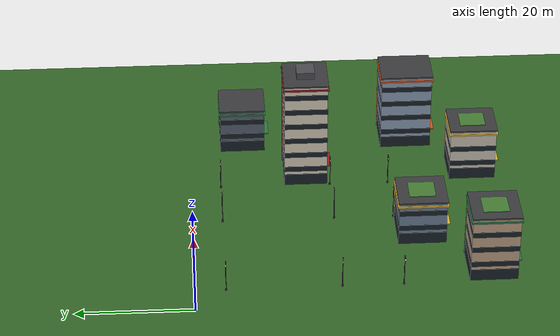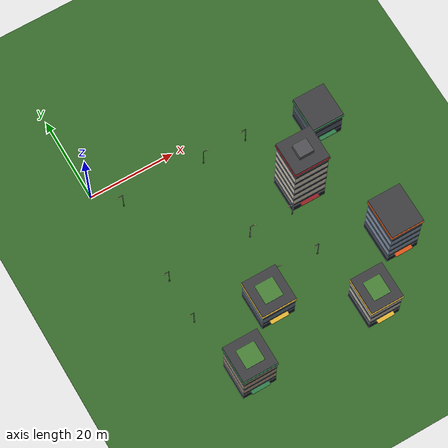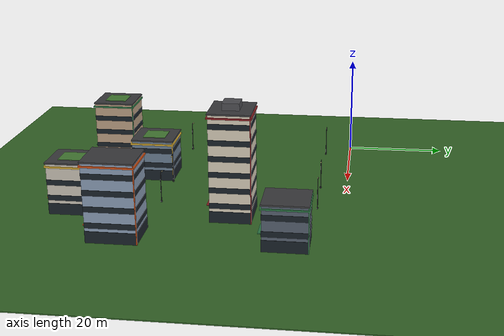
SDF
<sdf version="1.9">
 <world name="city">
  <model name="ground">
   <static>true</static>
   <link name="link">
    <collision name="collision">
     <pose>0 0 -0.1 0 0 0</pose>
     <geometry><box><size>220 220 0.2</size></box></geometry>
     <surface><friction><ode><mu>1.0</mu><mu2>1.0</mu2></ode></friction></surface>
    </collision>
    <visual name="visual">
     <pose>0 0 -0.1 0 0 0</pose>
     <geometry><box><size>220 220 0.2</size></box></geometry>
     <material>
      <ambient>0.17 0.33 0.13 1</ambient>
      <diffuse>0.21 0.41 0.16 1</diffuse>
      <specular>0.05 0.06 0.04 1</specular>
     </material>
    </visual>
   </link>
  </model>
  <model name="building_10">
   <static>true</static>
   <pose>9.5 -50.5 0 0 0 0</pose>
   <link name="link">
    <collision name="collision">
     <pose>0 0 6.204 0 0 0</pose>
     <geometry><box><size>7.75 8.086 12.408</size></box></geometry>
    </collision>
    <visual name="body">
     <pose>0 0 6.204 0 0 0</pose>
     <geometry><box><size>7.75 8.086 12.408</size></box></geometry>
     <material>
      <ambient>0.74 0.63 0.52 1</ambient>
      <diffuse>0.74 0.63 0.52 1</diffuse>
      <specular>0.16 0.16 0.18 1</specular>
      <pbr><metal><roughness>0.62</roughness><metalness>0.08</metalness></metal></pbr>
     </material>
    </visual>
    <visual name="podium">
     <pose>0 0 1.1 0 0 0</pose>
     <geometry><box><size>7.85 8.186 2.2</size></box></geometry>
     <material>
      <ambient>0.07 0.09 0.11 1</ambient>
      <diffuse>0.1 0.13 0.16 1</diffuse>
      <specular>0.45 0.47 0.5 1</specular>
      <pbr><metal><roughness>0.22</roughness><metalness>0.4</metalness></metal></pbr>
     </material>
    </visual>
    <visual name="canopy">
     <pose>0 -4.443 2.55 0 0 0</pose>
     <geometry><box><size>4.263 0.90 0.18</size></box></geometry>
     <material>
      <ambient>0.18 0.48 0.28 1</ambient>
      <diffuse>0.18 0.48 0.28 1</diffuse>
      <specular>0.25 0.25 0.25 1</specular>
      <pbr><metal><roughness>0.45</roughness><metalness>0</metalness></metal></pbr>
     </material>
    </visual>
    <visual name="corner_column">
     <pose>3.915 4.083 6.204 0 0 0</pose>
     <geometry><box><size>0.16 0.16 12.408</size></box></geometry>
     <material>
      <ambient>0.18 0.48 0.28 1</ambient>
      <diffuse>0.18 0.48 0.28 1</diffuse>
      <specular>0.25 0.25 0.25 1</specular>
      <pbr><metal><roughness>0.45</roughness><metalness>0</metalness></metal></pbr>
     </material>
    </visual>
    <visual name="glass_0">
     <pose>0 0 3.3 0 0 0</pose>
     <geometry><box><size>7.81 8.146 1.05</size></box></geometry>
     <material>
      <ambient>0.075 0.095 0.115 1</ambient>
      <diffuse>0.1 0.13 0.16 1</diffuse>
      <specular>0.55 0.6 0.65 1</specular>
      <emissive>0.06 0.09 0.12 1</emissive>
      <pbr><metal><roughness>0.1</roughness><metalness>0.55</metalness></metal></pbr>
     </material>
    </visual>
    <visual name="glass_1">
     <pose>0 0 6.3 0 0 0</pose>
     <geometry><box><size>7.81 8.146 1.05</size></box></geometry>
     <material>
      <ambient>0.075 0.095 0.115 1</ambient>
      <diffuse>0.1 0.13 0.16 1</diffuse>
      <specular>0.55 0.6 0.65 1</specular>
      <emissive>0.06 0.09 0.12 1</emissive>
      <pbr><metal><roughness>0.1</roughness><metalness>0.55</metalness></metal></pbr>
     </material>
    </visual>
    <visual name="glass_2">
     <pose>0 0 9.3 0 0 0</pose>
     <geometry><box><size>7.81 8.146 1.05</size></box></geometry>
     <material>
      <ambient>0.075 0.095 0.115 1</ambient>
      <diffuse>0.1 0.13 0.16 1</diffuse>
      <specular>0.55 0.6 0.65 1</specular>
      <emissive>0.46 0.3 0.12 1</emissive>
      <pbr><metal><roughness>0.1</roughness><metalness>0.55</metalness></metal></pbr>
     </material>
    </visual>
    <visual name="cornice">
     <pose>0 0 11.858 0 0 0</pose>
     <geometry><box><size>8.25 8.586 0.30</size></box></geometry>
     <material>
      <ambient>0.18 0.48 0.28 1</ambient>
      <diffuse>0.18 0.48 0.28 1</diffuse>
      <specular>0.2 0.2 0.2 1</specular>
      <pbr><metal><roughness>0.55</roughness><metalness>0</metalness></metal></pbr>
     </material>
    </visual>
    <visual name="roof">
     <pose>0 0 12.558 0 0 0</pose>
     <geometry><box><size>8.05 8.386 0.30</size></box></geometry>
     <material>
      <ambient>0.24 0.24 0.25 1</ambient>
      <diffuse>0.24 0.24 0.25 1</diffuse>
      <specular>0.18 0.18 0.18 1</specular>
      <pbr><metal><roughness>0.85</roughness><metalness>0</metalness></metal></pbr>
     </material>
    </visual>
    <visual name="roof_garden">
     <pose>0 0 12.748 0 0 0</pose>
     <geometry><box><size>4.263 4.447 0.16</size></box></geometry>
     <material>
      <ambient>0.24 0.44 0.18 1</ambient>
      <diffuse>0.28 0.5 0.21 1</diffuse>
      <specular>0.05 0.06 0.04 1</specular>
     </material>
    </visual>
   </link>
  </model>
  <model name="building_11">
   <static>true</static>
   <pose>20.5 -39.5 0 0 0 0</pose>
   <link name="link">
    <collision name="collision">
     <pose>0 0 4.11 0 0 0</pose>
     <geometry><box><size>7.762 8.267 8.219</size></box></geometry>
    </collision>
    <visual name="body">
     <pose>0 0 4.11 0 0 0</pose>
     <geometry><box><size>7.762 8.267 8.219</size></box></geometry>
     <material>
      <ambient>0.42 0.5 0.58 1</ambient>
      <diffuse>0.42 0.5 0.58 1</diffuse>
      <specular>0.16 0.16 0.18 1</specular>
      <pbr><metal><roughness>0.62</roughness><metalness>0.08</metalness></metal></pbr>
     </material>
    </visual>
    <visual name="podium">
     <pose>0 0 1.1 0 0 0</pose>
     <geometry><box><size>7.862 8.367 2.2</size></box></geometry>
     <material>
      <ambient>0.07 0.09 0.11 1</ambient>
      <diffuse>0.1 0.13 0.16 1</diffuse>
      <specular>0.45 0.47 0.5 1</specular>
      <pbr><metal><roughness>0.22</roughness><metalness>0.4</metalness></metal></pbr>
     </material>
    </visual>
    <visual name="canopy">
     <pose>0 -4.534 2.55 0 0 0</pose>
     <geometry><box><size>4.269 0.90 0.18</size></box></geometry>
     <material>
      <ambient>0.88 0.7 0.2 1</ambient>
      <diffuse>0.88 0.7 0.2 1</diffuse>
      <specular>0.25 0.25 0.25 1</specular>
      <pbr><metal><roughness>0.45</roughness><metalness>0</metalness></metal></pbr>
     </material>
    </visual>
    <visual name="corner_column">
     <pose>3.921 4.174 4.11 0 0 0</pose>
     <geometry><box><size>0.16 0.16 8.219</size></box></geometry>
     <material>
      <ambient>0.88 0.7 0.2 1</ambient>
      <diffuse>0.88 0.7 0.2 1</diffuse>
      <specular>0.25 0.25 0.25 1</specular>
      <pbr><metal><roughness>0.45</roughness><metalness>0</metalness></metal></pbr>
     </material>
    </visual>
    <visual name="glass_0">
     <pose>0 0 3.3 0 0 0</pose>
     <geometry><box><size>7.822 8.327 1.05</size></box></geometry>
     <material>
      <ambient>0.075 0.095 0.115 1</ambient>
      <diffuse>0.1 0.13 0.16 1</diffuse>
      <specular>0.55 0.6 0.65 1</specular>
      <emissive>0.06 0.09 0.12 1</emissive>
      <pbr><metal><roughness>0.1</roughness><metalness>0.55</metalness></metal></pbr>
     </material>
    </visual>
    <visual name="glass_1">
     <pose>0 0 6.3 0 0 0</pose>
     <geometry><box><size>7.822 8.327 1.05</size></box></geometry>
     <material>
      <ambient>0.075 0.095 0.115 1</ambient>
      <diffuse>0.1 0.13 0.16 1</diffuse>
      <specular>0.55 0.6 0.65 1</specular>
      <emissive>0.46 0.3 0.12 1</emissive>
      <pbr><metal><roughness>0.1</roughness><metalness>0.55</metalness></metal></pbr>
     </material>
    </visual>
    <visual name="cornice">
     <pose>0 0 7.669 0 0 0</pose>
     <geometry><box><size>8.262 8.767 0.30</size></box></geometry>
     <material>
      <ambient>0.88 0.7 0.2 1</ambient>
      <diffuse>0.88 0.7 0.2 1</diffuse>
      <specular>0.2 0.2 0.2 1</specular>
      <pbr><metal><roughness>0.55</roughness><metalness>0</metalness></metal></pbr>
     </material>
    </visual>
    <visual name="roof">
     <pose>0 0 8.369 0 0 0</pose>
     <geometry><box><size>8.062 8.567 0.30</size></box></geometry>
     <material>
      <ambient>0.24 0.24 0.25 1</ambient>
      <diffuse>0.24 0.24 0.25 1</diffuse>
      <specular>0.18 0.18 0.18 1</specular>
      <pbr><metal><roughness>0.85</roughness><metalness>0</metalness></metal></pbr>
     </material>
    </visual>
    <visual name="roof_garden">
     <pose>0 0 8.559 0 0 0</pose>
     <geometry><box><size>4.269 4.547 0.16</size></box></geometry>
     <material>
      <ambient>0.24 0.44 0.18 1</ambient>
      <diffuse>0.28 0.5 0.21 1</diffuse>
      <specular>0.05 0.06 0.04 1</specular>
     </material>
    </visual>
   </link>
  </model>
  <model name="building_12">
   <static>true</static>
   <pose>39.5 -50.5 0 0 0 0</pose>
   <link name="link">
    <collision name="collision">
     <pose>0 0 4.934 0 0 0</pose>
     <geometry><box><size>7.285 8.18 9.868</size></box></geometry>
    </collision>
    <visual name="body">
     <pose>0 0 4.934 0 0 0</pose>
     <geometry><box><size>7.285 8.18 9.868</size></box></geometry>
     <material>
      <ambient>0.8 0.77 0.72 1</ambient>
      <diffuse>0.8 0.77 0.72 1</diffuse>
      <specular>0.16 0.16 0.18 1</specular>
      <pbr><metal><roughness>0.62</roughness><metalness>0.08</metalness></metal></pbr>
     </material>
    </visual>
    <visual name="podium">
     <pose>0 0 1.1 0 0 0</pose>
     <geometry><box><size>7.385 8.28 2.2</size></box></geometry>
     <material>
      <ambient>0.07 0.09 0.11 1</ambient>
      <diffuse>0.1 0.13 0.16 1</diffuse>
      <specular>0.45 0.47 0.5 1</specular>
      <pbr><metal><roughness>0.22</roughness><metalness>0.4</metalness></metal></pbr>
     </material>
    </visual>
    <visual name="canopy">
     <pose>0 -4.49 2.55 0 0 0</pose>
     <geometry><box><size>4.007 0.90 0.18</size></box></geometry>
     <material>
      <ambient>0.88 0.7 0.2 1</ambient>
      <diffuse>0.88 0.7 0.2 1</diffuse>
      <specular>0.25 0.25 0.25 1</specular>
      <pbr><metal><roughness>0.45</roughness><metalness>0</metalness></metal></pbr>
     </material>
    </visual>
    <visual name="corner_column">
     <pose>3.683 4.13 4.934 0 0 0</pose>
     <geometry><box><size>0.16 0.16 9.868</size></box></geometry>
     <material>
      <ambient>0.88 0.7 0.2 1</ambient>
      <diffuse>0.88 0.7 0.2 1</diffuse>
      <specular>0.25 0.25 0.25 1</specular>
      <pbr><metal><roughness>0.45</roughness><metalness>0</metalness></metal></pbr>
     </material>
    </visual>
    <visual name="glass_0">
     <pose>0 0 3.3 0 0 0</pose>
     <geometry><box><size>7.345 8.24 1.05</size></box></geometry>
     <material>
      <ambient>0.075 0.095 0.115 1</ambient>
      <diffuse>0.1 0.13 0.16 1</diffuse>
      <specular>0.55 0.6 0.65 1</specular>
      <emissive>0.06 0.09 0.12 1</emissive>
      <pbr><metal><roughness>0.1</roughness><metalness>0.55</metalness></metal></pbr>
     </material>
    </visual>
    <visual name="glass_1">
     <pose>0 0 6.3 0 0 0</pose>
     <geometry><box><size>7.345 8.24 1.05</size></box></geometry>
     <material>
      <ambient>0.075 0.095 0.115 1</ambient>
      <diffuse>0.1 0.13 0.16 1</diffuse>
      <specular>0.55 0.6 0.65 1</specular>
      <emissive>0.46 0.3 0.12 1</emissive>
      <pbr><metal><roughness>0.1</roughness><metalness>0.55</metalness></metal></pbr>
     </material>
    </visual>
    <visual name="cornice">
     <pose>0 0 9.318 0 0 0</pose>
     <geometry><box><size>7.785 8.68 0.30</size></box></geometry>
     <material>
      <ambient>0.88 0.7 0.2 1</ambient>
      <diffuse>0.88 0.7 0.2 1</diffuse>
      <specular>0.2 0.2 0.2 1</specular>
      <pbr><metal><roughness>0.55</roughness><metalness>0</metalness></metal></pbr>
     </material>
    </visual>
    <visual name="roof">
     <pose>0 0 10.018 0 0 0</pose>
     <geometry><box><size>7.585 8.48 0.30</size></box></geometry>
     <material>
      <ambient>0.24 0.24 0.25 1</ambient>
      <diffuse>0.24 0.24 0.25 1</diffuse>
      <specular>0.18 0.18 0.18 1</specular>
      <pbr><metal><roughness>0.85</roughness><metalness>0</metalness></metal></pbr>
     </material>
    </visual>
    <visual name="roof_garden">
     <pose>0 0 10.208 0 0 0</pose>
     <geometry><box><size>4.007 4.499 0.16</size></box></geometry>
     <material>
      <ambient>0.24 0.44 0.18 1</ambient>
      <diffuse>0.28 0.5 0.21 1</diffuse>
      <specular>0.05 0.06 0.04 1</specular>
     </material>
    </visual>
   </link>
  </model>
  <model name="building_13">
   <static>true</static>
   <pose>50.5 -39.5 0 0 0 0</pose>
   <link name="link">
    <collision name="collision">
     <pose>0 0 7.301 0 0 0</pose>
     <geometry><box><size>7.355 9.096 14.601</size></box></geometry>
    </collision>
    <visual name="body">
     <pose>0 0 7.301 0 0 0</pose>
     <geometry><box><size>7.355 9.096 14.601</size></box></geometry>
     <material>
      <ambient>0.55 0.62 0.72 1</ambient>
      <diffuse>0.55 0.62 0.72 1</diffuse>
      <specular>0.16 0.16 0.18 1</specular>
      <pbr><metal><roughness>0.62</roughness><metalness>0.08</metalness></metal></pbr>
     </material>
    </visual>
    <visual name="podium">
     <pose>0 0 1.1 0 0 0</pose>
     <geometry><box><size>7.455 9.196 2.2</size></box></geometry>
     <material>
      <ambient>0.07 0.09 0.11 1</ambient>
      <diffuse>0.1 0.13 0.16 1</diffuse>
      <specular>0.45 0.47 0.5 1</specular>
      <pbr><metal><roughness>0.22</roughness><metalness>0.4</metalness></metal></pbr>
     </material>
    </visual>
    <visual name="canopy">
     <pose>0 -4.948 2.55 0 0 0</pose>
     <geometry><box><size>4.045 0.90 0.18</size></box></geometry>
     <material>
      <ambient>0.85 0.33 0.09 1</ambient>
      <diffuse>0.85 0.33 0.09 1</diffuse>
      <specular>0.25 0.25 0.25 1</specular>
      <pbr><metal><roughness>0.45</roughness><metalness>0</metalness></metal></pbr>
     </material>
    </visual>
    <visual name="corner_column">
     <pose>3.717 4.588 7.301 0 0 0</pose>
     <geometry><box><size>0.16 0.16 14.601</size></box></geometry>
     <material>
      <ambient>0.85 0.33 0.09 1</ambient>
      <diffuse>0.85 0.33 0.09 1</diffuse>
      <specular>0.25 0.25 0.25 1</specular>
      <pbr><metal><roughness>0.45</roughness><metalness>0</metalness></metal></pbr>
     </material>
    </visual>
    <visual name="glass_0">
     <pose>0 0 3.3 0 0 0</pose>
     <geometry><box><size>7.415 9.156 1.05</size></box></geometry>
     <material>
      <ambient>0.075 0.095 0.115 1</ambient>
      <diffuse>0.1 0.13 0.16 1</diffuse>
      <specular>0.55 0.6 0.65 1</specular>
      <emissive>0.06 0.09 0.12 1</emissive>
      <pbr><metal><roughness>0.1</roughness><metalness>0.55</metalness></metal></pbr>
     </material>
    </visual>
    <visual name="glass_1">
     <pose>0 0 6.3 0 0 0</pose>
     <geometry><box><size>7.415 9.156 1.05</size></box></geometry>
     <material>
      <ambient>0.075 0.095 0.115 1</ambient>
      <diffuse>0.1 0.13 0.16 1</diffuse>
      <specular>0.55 0.6 0.65 1</specular>
      <emissive>0.06 0.09 0.12 1</emissive>
      <pbr><metal><roughness>0.1</roughness><metalness>0.55</metalness></metal></pbr>
     </material>
    </visual>
    <visual name="glass_2">
     <pose>0 0 9.3 0 0 0</pose>
     <geometry><box><size>7.415 9.156 1.05</size></box></geometry>
     <material>
      <ambient>0.075 0.095 0.115 1</ambient>
      <diffuse>0.1 0.13 0.16 1</diffuse>
      <specular>0.55 0.6 0.65 1</specular>
      <emissive>0.06 0.09 0.12 1</emissive>
      <pbr><metal><roughness>0.1</roughness><metalness>0.55</metalness></metal></pbr>
     </material>
    </visual>
    <visual name="glass_3">
     <pose>0 0 12.3 0 0 0</pose>
     <geometry><box><size>7.415 9.156 1.05</size></box></geometry>
     <material>
      <ambient>0.075 0.095 0.115 1</ambient>
      <diffuse>0.1 0.13 0.16 1</diffuse>
      <specular>0.55 0.6 0.65 1</specular>
      <emissive>0.06 0.09 0.12 1</emissive>
      <pbr><metal><roughness>0.1</roughness><metalness>0.55</metalness></metal></pbr>
     </material>
    </visual>
    <visual name="cornice">
     <pose>0 0 14.051 0 0 0</pose>
     <geometry><box><size>7.855 9.596 0.30</size></box></geometry>
     <material>
      <ambient>0.85 0.33 0.09 1</ambient>
      <diffuse>0.85 0.33 0.09 1</diffuse>
      <specular>0.2 0.2 0.2 1</specular>
      <pbr><metal><roughness>0.55</roughness><metalness>0</metalness></metal></pbr>
     </material>
    </visual>
    <visual name="roof">
     <pose>0 0 14.751 0 0 0</pose>
     <geometry><box><size>7.655 9.396 0.30</size></box></geometry>
     <material>
      <ambient>0.24 0.24 0.25 1</ambient>
      <diffuse>0.24 0.24 0.25 1</diffuse>
      <specular>0.18 0.18 0.18 1</specular>
      <pbr><metal><roughness>0.85</roughness><metalness>0</metalness></metal></pbr>
     </material>
    </visual>
   </link>
  </model>
  <model name="building_14">
   <static>true</static>
   <pose>39.5 -20.5 0 0 0 0</pose>
   <link name="link">
    <collision name="collision">
     <pose>0 0 10.189 0 0 0</pose>
     <geometry><box><size>7.886 7.579 20.378</size></box></geometry>
    </collision>
    <visual name="body">
     <pose>0 0 10.189 0 0 0</pose>
     <geometry><box><size>7.886 7.579 20.378</size></box></geometry>
     <material>
      <ambient>0.86 0.82 0.74 1</ambient>
      <diffuse>0.86 0.82 0.74 1</diffuse>
      <specular>0.16 0.16 0.18 1</specular>
      <pbr><metal><roughness>0.62</roughness><metalness>0.08</metalness></metal></pbr>
     </material>
    </visual>
    <visual name="podium">
     <pose>0 0 1.1 0 0 0</pose>
     <geometry><box><size>7.986 7.679 2.2</size></box></geometry>
     <material>
      <ambient>0.07 0.09 0.11 1</ambient>
      <diffuse>0.1 0.13 0.16 1</diffuse>
      <specular>0.45 0.47 0.5 1</specular>
      <pbr><metal><roughness>0.22</roughness><metalness>0.4</metalness></metal></pbr>
     </material>
    </visual>
    <visual name="canopy">
     <pose>0 -4.189 2.55 0 0 0</pose>
     <geometry><box><size>4.337 0.90 0.18</size></box></geometry>
     <material>
      <ambient>0.56 0.12 0.14 1</ambient>
      <diffuse>0.56 0.12 0.14 1</diffuse>
      <specular>0.25 0.25 0.25 1</specular>
      <pbr><metal><roughness>0.45</roughness><metalness>0</metalness></metal></pbr>
     </material>
    </visual>
    <visual name="corner_column">
     <pose>3.983 3.829 10.189 0 0 0</pose>
     <geometry><box><size>0.16 0.16 20.378</size></box></geometry>
     <material>
      <ambient>0.56 0.12 0.14 1</ambient>
      <diffuse>0.56 0.12 0.14 1</diffuse>
      <specular>0.25 0.25 0.25 1</specular>
      <pbr><metal><roughness>0.45</roughness><metalness>0</metalness></metal></pbr>
     </material>
    </visual>
    <visual name="glass_0">
     <pose>0 0 3.3 0 0 0</pose>
     <geometry><box><size>7.946 7.639 1.05</size></box></geometry>
     <material>
      <ambient>0.075 0.095 0.115 1</ambient>
      <diffuse>0.1 0.13 0.16 1</diffuse>
      <specular>0.55 0.6 0.65 1</specular>
      <emissive>0.06 0.09 0.12 1</emissive>
      <pbr><metal><roughness>0.1</roughness><metalness>0.55</metalness></metal></pbr>
     </material>
    </visual>
    <visual name="glass_1">
     <pose>0 0 6.3 0 0 0</pose>
     <geometry><box><size>7.946 7.639 1.05</size></box></geometry>
     <material>
      <ambient>0.075 0.095 0.115 1</ambient>
      <diffuse>0.1 0.13 0.16 1</diffuse>
      <specular>0.55 0.6 0.65 1</specular>
      <emissive>0.46 0.3 0.12 1</emissive>
      <pbr><metal><roughness>0.1</roughness><metalness>0.55</metalness></metal></pbr>
     </material>
    </visual>
    <visual name="glass_2">
     <pose>0 0 9.3 0 0 0</pose>
     <geometry><box><size>7.946 7.639 1.05</size></box></geometry>
     <material>
      <ambient>0.075 0.095 0.115 1</ambient>
      <diffuse>0.1 0.13 0.16 1</diffuse>
      <specular>0.55 0.6 0.65 1</specular>
      <emissive>0.46 0.3 0.12 1</emissive>
      <pbr><metal><roughness>0.1</roughness><metalness>0.55</metalness></metal></pbr>
     </material>
    </visual>
    <visual name="glass_3">
     <pose>0 0 12.3 0 0 0</pose>
     <geometry><box><size>7.946 7.639 1.05</size></box></geometry>
     <material>
      <ambient>0.075 0.095 0.115 1</ambient>
      <diffuse>0.1 0.13 0.16 1</diffuse>
      <specular>0.55 0.6 0.65 1</specular>
      <emissive>0.06 0.09 0.12 1</emissive>
      <pbr><metal><roughness>0.1</roughness><metalness>0.55</metalness></metal></pbr>
     </material>
    </visual>
    <visual name="glass_4">
     <pose>0 0 15.3 0 0 0</pose>
     <geometry><box><size>7.946 7.639 1.05</size></box></geometry>
     <material>
      <ambient>0.075 0.095 0.115 1</ambient>
      <diffuse>0.1 0.13 0.16 1</diffuse>
      <specular>0.55 0.6 0.65 1</specular>
      <emissive>0.06 0.09 0.12 1</emissive>
      <pbr><metal><roughness>0.1</roughness><metalness>0.55</metalness></metal></pbr>
     </material>
    </visual>
    <visual name="glass_5">
     <pose>0 0 18.3 0 0 0</pose>
     <geometry><box><size>7.946 7.639 1.05</size></box></geometry>
     <material>
      <ambient>0.075 0.095 0.115 1</ambient>
      <diffuse>0.1 0.13 0.16 1</diffuse>
      <specular>0.55 0.6 0.65 1</specular>
      <emissive>0.06 0.09 0.12 1</emissive>
      <pbr><metal><roughness>0.1</roughness><metalness>0.55</metalness></metal></pbr>
     </material>
    </visual>
    <visual name="cornice">
     <pose>0 0 19.828 0 0 0</pose>
     <geometry><box><size>8.386 8.079 0.30</size></box></geometry>
     <material>
      <ambient>0.56 0.12 0.14 1</ambient>
      <diffuse>0.56 0.12 0.14 1</diffuse>
      <specular>0.2 0.2 0.2 1</specular>
      <pbr><metal><roughness>0.55</roughness><metalness>0</metalness></metal></pbr>
     </material>
    </visual>
    <visual name="roof">
     <pose>0 0 20.528 0 0 0</pose>
     <geometry><box><size>8.186 7.879 0.30</size></box></geometry>
     <material>
      <ambient>0.24 0.24 0.25 1</ambient>
      <diffuse>0.24 0.24 0.25 1</diffuse>
      <specular>0.18 0.18 0.18 1</specular>
      <pbr><metal><roughness>0.85</roughness><metalness>0</metalness></metal></pbr>
     </material>
    </visual>
    <visual name="roof_unit">
     <pose>0 0 21.328 0 0 0</pose>
     <geometry><box><size>3.312 3.183 1.30</size></box></geometry>
     <material>
      <ambient>0.31 0.31 0.33 1</ambient>
      <diffuse>0.31 0.31 0.33 1</diffuse>
      <specular>0.18 0.18 0.18 1</specular>
      <pbr><metal><roughness>0.55</roughness><metalness>0.3</metalness></metal></pbr>
     </material>
    </visual>
   </link>
  </model>
  <model name="building_15">
   <static>true</static>
   <pose>50.5 -9.5 0 0 0 0</pose>
   <link name="link">
    <collision name="collision">
     <pose>0 0 4.197 0 0 0</pose>
     <geometry><box><size>7.251 7.996 8.394</size></box></geometry>
    </collision>
    <visual name="body">
     <pose>0 0 4.197 0 0 0</pose>
     <geometry><box><size>7.251 7.996 8.394</size></box></geometry>
     <material>
      <ambient>0.34 0.38 0.44 1</ambient>
      <diffuse>0.34 0.38 0.44 1</diffuse>
      <specular>0.16 0.16 0.18 1</specular>
      <pbr><metal><roughness>0.62</roughness><metalness>0.08</metalness></metal></pbr>
     </material>
    </visual>
    <visual name="podium">
     <pose>0 0 1.1 0 0 0</pose>
     <geometry><box><size>7.351 8.096 2.2</size></box></geometry>
     <material>
      <ambient>0.07 0.09 0.11 1</ambient>
      <diffuse>0.1 0.13 0.16 1</diffuse>
      <specular>0.45 0.47 0.5 1</specular>
      <pbr><metal><roughness>0.22</roughness><metalness>0.4</metalness></metal></pbr>
     </material>
    </visual>
    <visual name="canopy">
     <pose>0 -4.398 2.55 0 0 0</pose>
     <geometry><box><size>3.988 0.90 0.18</size></box></geometry>
     <material>
      <ambient>0.18 0.48 0.28 1</ambient>
      <diffuse>0.18 0.48 0.28 1</diffuse>
      <specular>0.25 0.25 0.25 1</specular>
      <pbr><metal><roughness>0.45</roughness><metalness>0</metalness></metal></pbr>
     </material>
    </visual>
    <visual name="corner_column">
     <pose>3.665 4.038 4.197 0 0 0</pose>
     <geometry><box><size>0.16 0.16 8.394</size></box></geometry>
     <material>
      <ambient>0.18 0.48 0.28 1</ambient>
      <diffuse>0.18 0.48 0.28 1</diffuse>
      <specular>0.25 0.25 0.25 1</specular>
      <pbr><metal><roughness>0.45</roughness><metalness>0</metalness></metal></pbr>
     </material>
    </visual>
    <visual name="glass_0">
     <pose>0 0 3.3 0 0 0</pose>
     <geometry><box><size>7.311 8.056 1.05</size></box></geometry>
     <material>
      <ambient>0.075 0.095 0.115 1</ambient>
      <diffuse>0.1 0.13 0.16 1</diffuse>
      <specular>0.55 0.6 0.65 1</specular>
      <emissive>0.46 0.3 0.12 1</emissive>
      <pbr><metal><roughness>0.1</roughness><metalness>0.55</metalness></metal></pbr>
     </material>
    </visual>
    <visual name="glass_1">
     <pose>0 0 6.3 0 0 0</pose>
     <geometry><box><size>7.311 8.056 1.05</size></box></geometry>
     <material>
      <ambient>0.075 0.095 0.115 1</ambient>
      <diffuse>0.1 0.13 0.16 1</diffuse>
      <specular>0.55 0.6 0.65 1</specular>
      <emissive>0.46 0.3 0.12 1</emissive>
      <pbr><metal><roughness>0.1</roughness><metalness>0.55</metalness></metal></pbr>
     </material>
    </visual>
    <visual name="cornice">
     <pose>0 0 7.844 0 0 0</pose>
     <geometry><box><size>7.751 8.496 0.30</size></box></geometry>
     <material>
      <ambient>0.18 0.48 0.28 1</ambient>
      <diffuse>0.18 0.48 0.28 1</diffuse>
      <specular>0.2 0.2 0.2 1</specular>
      <pbr><metal><roughness>0.55</roughness><metalness>0</metalness></metal></pbr>
     </material>
    </visual>
    <visual name="roof">
     <pose>0 0 8.544 0 0 0</pose>
     <geometry><box><size>7.551 8.296 0.30</size></box></geometry>
     <material>
      <ambient>0.24 0.24 0.25 1</ambient>
      <diffuse>0.24 0.24 0.25 1</diffuse>
      <specular>0.18 0.18 0.18 1</specular>
      <pbr><metal><roughness>0.85</roughness><metalness>0</metalness></metal></pbr>
     </material>
    </visual>
   </link>
  </model>
  <model name="streetlight_14">
   <static>true</static>
   <pose>5.2 -35.2 0 0 0 3.142</pose>
   <link name="link">
    <visual name="foundation">
     <pose>0 0 0.15 0 0 0</pose>
     <geometry><cylinder><radius>0.18</radius><length>0.3</length></cylinder></geometry>
     <material>
      <ambient>0.17 0.18 0.19 1</ambient>
      <diffuse>0.17 0.18 0.19 1</diffuse>
      <specular>0.3 0.3 0.32 1</specular>
      <pbr><metal><roughness>0.45</roughness><metalness>0.35</metalness></metal></pbr>
     </material>
    </visual>
    <visual name="pole">
     <pose>0 0 3.0 0 0 0</pose>
     <geometry><cylinder><radius>0.075</radius><length>6</length></cylinder></geometry>
     <material>
      <ambient>0.17 0.18 0.19 1</ambient>
      <diffuse>0.17 0.18 0.19 1</diffuse>
      <specular>0.3 0.3 0.32 1</specular>
      <pbr><metal><roughness>0.45</roughness><metalness>0.35</metalness></metal></pbr>
     </material>
    </visual>
    <visual name="arm">
     <pose>0.55 0 5.95 0 0 0</pose>
     <geometry><box><size>1.10 0.09 0.09</size></box></geometry>
     <material>
      <ambient>0.17 0.18 0.19 1</ambient>
      <diffuse>0.17 0.18 0.19 1</diffuse>
      <specular>0.3 0.3 0.32 1</specular>
      <pbr><metal><roughness>0.45</roughness><metalness>0.35</metalness></metal></pbr>
     </material>
    </visual>
    <visual name="head">
     <pose>1.05 0 5.83 0 0 0</pose>
     <geometry><box><size>0.42 0.20 0.10</size></box></geometry>
     <material>
      <ambient>1 0.9 0.62 1</ambient>
      <diffuse>1 0.9 0.62 1</diffuse>
      <specular>0.4 0.4 0.4 1</specular>
      <emissive>1 0.78 0.42 1</emissive>
     </material>
    </visual>
   </link>
  </model>
  <model name="streetlight_15">
   <static>true</static>
   <pose>5.2 -24.8 0 0 0 3.142</pose>
   <link name="link">
    <visual name="foundation">
     <pose>0 0 0.15 0 0 0</pose>
     <geometry><cylinder><radius>0.18</radius><length>0.3</length></cylinder></geometry>
     <material>
      <ambient>0.17 0.18 0.19 1</ambient>
      <diffuse>0.17 0.18 0.19 1</diffuse>
      <specular>0.3 0.3 0.32 1</specular>
      <pbr><metal><roughness>0.45</roughness><metalness>0.35</metalness></metal></pbr>
     </material>
    </visual>
    <visual name="pole">
     <pose>0 0 3.0 0 0 0</pose>
     <geometry><cylinder><radius>0.075</radius><length>6</length></cylinder></geometry>
     <material>
      <ambient>0.17 0.18 0.19 1</ambient>
      <diffuse>0.17 0.18 0.19 1</diffuse>
      <specular>0.3 0.3 0.32 1</specular>
      <pbr><metal><roughness>0.45</roughness><metalness>0.35</metalness></metal></pbr>
     </material>
    </visual>
    <visual name="arm">
     <pose>0.55 0 5.95 0 0 0</pose>
     <geometry><box><size>1.10 0.09 0.09</size></box></geometry>
     <material>
      <ambient>0.17 0.18 0.19 1</ambient>
      <diffuse>0.17 0.18 0.19 1</diffuse>
      <specular>0.3 0.3 0.32 1</specular>
      <pbr><metal><roughness>0.45</roughness><metalness>0.35</metalness></metal></pbr>
     </material>
    </visual>
    <visual name="head">
     <pose>1.05 0 5.83 0 0 0</pose>
     <geometry><box><size>0.42 0.20 0.10</size></box></geometry>
     <material>
      <ambient>1 0.9 0.62 1</ambient>
      <diffuse>1 0.9 0.62 1</diffuse>
      <specular>0.4 0.4 0.4 1</specular>
      <emissive>1 0.78 0.42 1</emissive>
     </material>
    </visual>
   </link>
  </model>
  <model name="streetlight_18">
   <static>true</static>
   <pose>5.2 -5.2 0 0 0 3.142</pose>
   <link name="link">
    <visual name="foundation">
     <pose>0 0 0.15 0 0 0</pose>
     <geometry><cylinder><radius>0.18</radius><length>0.3</length></cylinder></geometry>
     <material>
      <ambient>0.17 0.18 0.19 1</ambient>
      <diffuse>0.17 0.18 0.19 1</diffuse>
      <specular>0.3 0.3 0.32 1</specular>
      <pbr><metal><roughness>0.45</roughness><metalness>0.35</metalness></metal></pbr>
     </material>
    </visual>
    <visual name="pole">
     <pose>0 0 3.0 0 0 0</pose>
     <geometry><cylinder><radius>0.075</radius><length>6</length></cylinder></geometry>
     <material>
      <ambient>0.17 0.18 0.19 1</ambient>
      <diffuse>0.17 0.18 0.19 1</diffuse>
      <specular>0.3 0.3 0.32 1</specular>
      <pbr><metal><roughness>0.45</roughness><metalness>0.35</metalness></metal></pbr>
     </material>
    </visual>
    <visual name="arm">
     <pose>0.55 0 5.95 0 0 0</pose>
     <geometry><box><size>1.10 0.09 0.09</size></box></geometry>
     <material>
      <ambient>0.17 0.18 0.19 1</ambient>
      <diffuse>0.17 0.18 0.19 1</diffuse>
      <specular>0.3 0.3 0.32 1</specular>
      <pbr><metal><roughness>0.45</roughness><metalness>0.35</metalness></metal></pbr>
     </material>
    </visual>
    <visual name="head">
     <pose>1.05 0 5.83 0 0 0</pose>
     <geometry><box><size>0.42 0.20 0.10</size></box></geometry>
     <material>
      <ambient>1 0.9 0.62 1</ambient>
      <diffuse>1 0.9 0.62 1</diffuse>
      <specular>0.4 0.4 0.4 1</specular>
      <emissive>1 0.78 0.42 1</emissive>
     </material>
    </visual>
    <light type="point" name="lamp">
     <pose>1.05 0 5.70 0 0 0</pose>
     <diffuse>1.0 0.80 0.52 1</diffuse>
     <specular>0.5 0.5 0.5 1</specular>
     <attenuation>
      <range>18</range>
      <constant>1.0</constant>
      <linear>0.08</linear>
      <quadratic>0.015</quadratic>
     </attenuation>
     <cast_shadows>false</cast_shadows>
    </light>
   </link>
  </model>
  <model name="streetlight_24">
   <static>true</static>
   <pose>24.8 -35.2 0 0 0 0</pose>
   <link name="link">
    <visual name="foundation">
     <pose>0 0 0.15 0 0 0</pose>
     <geometry><cylinder><radius>0.18</radius><length>0.3</length></cylinder></geometry>
     <material>
      <ambient>0.17 0.18 0.19 1</ambient>
      <diffuse>0.17 0.18 0.19 1</diffuse>
      <specular>0.3 0.3 0.32 1</specular>
      <pbr><metal><roughness>0.45</roughness><metalness>0.35</metalness></metal></pbr>
     </material>
    </visual>
    <visual name="pole">
     <pose>0 0 3.0 0 0 0</pose>
     <geometry><cylinder><radius>0.075</radius><length>6</length></cylinder></geometry>
     <material>
      <ambient>0.17 0.18 0.19 1</ambient>
      <diffuse>0.17 0.18 0.19 1</diffuse>
      <specular>0.3 0.3 0.32 1</specular>
      <pbr><metal><roughness>0.45</roughness><metalness>0.35</metalness></metal></pbr>
     </material>
    </visual>
    <visual name="arm">
     <pose>0.55 0 5.95 0 0 0</pose>
     <geometry><box><size>1.10 0.09 0.09</size></box></geometry>
     <material>
      <ambient>0.17 0.18 0.19 1</ambient>
      <diffuse>0.17 0.18 0.19 1</diffuse>
      <specular>0.3 0.3 0.32 1</specular>
      <pbr><metal><roughness>0.45</roughness><metalness>0.35</metalness></metal></pbr>
     </material>
    </visual>
    <visual name="head">
     <pose>1.05 0 5.83 0 0 0</pose>
     <geometry><box><size>0.42 0.20 0.10</size></box></geometry>
     <material>
      <ambient>1 0.9 0.62 1</ambient>
      <diffuse>1 0.9 0.62 1</diffuse>
      <specular>0.4 0.4 0.4 1</specular>
      <emissive>1 0.78 0.42 1</emissive>
     </material>
    </visual>
   </link>
  </model>
  <model name="streetlight_25">
   <static>true</static>
   <pose>24.8 -24.8 0 0 0 0</pose>
   <link name="link">
    <visual name="foundation">
     <pose>0 0 0.15 0 0 0</pose>
     <geometry><cylinder><radius>0.18</radius><length>0.3</length></cylinder></geometry>
     <material>
      <ambient>0.17 0.18 0.19 1</ambient>
      <diffuse>0.17 0.18 0.19 1</diffuse>
      <specular>0.3 0.3 0.32 1</specular>
      <pbr><metal><roughness>0.45</roughness><metalness>0.35</metalness></metal></pbr>
     </material>
    </visual>
    <visual name="pole">
     <pose>0 0 3.0 0 0 0</pose>
     <geometry><cylinder><radius>0.075</radius><length>6</length></cylinder></geometry>
     <material>
      <ambient>0.17 0.18 0.19 1</ambient>
      <diffuse>0.17 0.18 0.19 1</diffuse>
      <specular>0.3 0.3 0.32 1</specular>
      <pbr><metal><roughness>0.45</roughness><metalness>0.35</metalness></metal></pbr>
     </material>
    </visual>
    <visual name="arm">
     <pose>0.55 0 5.95 0 0 0</pose>
     <geometry><box><size>1.10 0.09 0.09</size></box></geometry>
     <material>
      <ambient>0.17 0.18 0.19 1</ambient>
      <diffuse>0.17 0.18 0.19 1</diffuse>
      <specular>0.3 0.3 0.32 1</specular>
      <pbr><metal><roughness>0.45</roughness><metalness>0.35</metalness></metal></pbr>
     </material>
    </visual>
    <visual name="head">
     <pose>1.05 0 5.83 0 0 0</pose>
     <geometry><box><size>0.42 0.20 0.10</size></box></geometry>
     <material>
      <ambient>1 0.9 0.62 1</ambient>
      <diffuse>1 0.9 0.62 1</diffuse>
      <specular>0.4 0.4 0.4 1</specular>
      <emissive>1 0.78 0.42 1</emissive>
     </material>
    </visual>
   </link>
  </model>
  <model name="streetlight_26">
   <static>true</static>
   <pose>35.2 -35.2 0 0 0 3.142</pose>
   <link name="link">
    <visual name="foundation">
     <pose>0 0 0.15 0 0 0</pose>
     <geometry><cylinder><radius>0.18</radius><length>0.3</length></cylinder></geometry>
     <material>
      <ambient>0.17 0.18 0.19 1</ambient>
      <diffuse>0.17 0.18 0.19 1</diffuse>
      <specular>0.3 0.3 0.32 1</specular>
      <pbr><metal><roughness>0.45</roughness><metalness>0.35</metalness></metal></pbr>
     </material>
    </visual>
    <visual name="pole">
     <pose>0 0 3.0 0 0 0</pose>
     <geometry><cylinder><radius>0.075</radius><length>6</length></cylinder></geometry>
     <material>
      <ambient>0.17 0.18 0.19 1</ambient>
      <diffuse>0.17 0.18 0.19 1</diffuse>
      <specular>0.3 0.3 0.32 1</specular>
      <pbr><metal><roughness>0.45</roughness><metalness>0.35</metalness></metal></pbr>
     </material>
    </visual>
    <visual name="arm">
     <pose>0.55 0 5.95 0 0 0</pose>
     <geometry><box><size>1.10 0.09 0.09</size></box></geometry>
     <material>
      <ambient>0.17 0.18 0.19 1</ambient>
      <diffuse>0.17 0.18 0.19 1</diffuse>
      <specular>0.3 0.3 0.32 1</specular>
      <pbr><metal><roughness>0.45</roughness><metalness>0.35</metalness></metal></pbr>
     </material>
    </visual>
    <visual name="head">
     <pose>1.05 0 5.83 0 0 0</pose>
     <geometry><box><size>0.42 0.20 0.10</size></box></geometry>
     <material>
      <ambient>1 0.9 0.62 1</ambient>
      <diffuse>1 0.9 0.62 1</diffuse>
      <specular>0.4 0.4 0.4 1</specular>
      <emissive>1 0.78 0.42 1</emissive>
     </material>
    </visual>
   </link>
  </model>
  <model name="streetlight_27">
   <static>true</static>
   <pose>35.2 -24.8 0 0 0 3.142</pose>
   <link name="link">
    <visual name="foundation">
     <pose>0 0 0.15 0 0 0</pose>
     <geometry><cylinder><radius>0.18</radius><length>0.3</length></cylinder></geometry>
     <material>
      <ambient>0.17 0.18 0.19 1</ambient>
      <diffuse>0.17 0.18 0.19 1</diffuse>
      <specular>0.3 0.3 0.32 1</specular>
      <pbr><metal><roughness>0.45</roughness><metalness>0.35</metalness></metal></pbr>
     </material>
    </visual>
    <visual name="pole">
     <pose>0 0 3.0 0 0 0</pose>
     <geometry><cylinder><radius>0.075</radius><length>6</length></cylinder></geometry>
     <material>
      <ambient>0.17 0.18 0.19 1</ambient>
      <diffuse>0.17 0.18 0.19 1</diffuse>
      <specular>0.3 0.3 0.32 1</specular>
      <pbr><metal><roughness>0.45</roughness><metalness>0.35</metalness></metal></pbr>
     </material>
    </visual>
    <visual name="arm">
     <pose>0.55 0 5.95 0 0 0</pose>
     <geometry><box><size>1.10 0.09 0.09</size></box></geometry>
     <material>
      <ambient>0.17 0.18 0.19 1</ambient>
      <diffuse>0.17 0.18 0.19 1</diffuse>
      <specular>0.3 0.3 0.32 1</specular>
      <pbr><metal><roughness>0.45</roughness><metalness>0.35</metalness></metal></pbr>
     </material>
    </visual>
    <visual name="head">
     <pose>1.05 0 5.83 0 0 0</pose>
     <geometry><box><size>0.42 0.20 0.10</size></box></geometry>
     <material>
      <ambient>1 0.9 0.62 1</ambient>
      <diffuse>1 0.9 0.62 1</diffuse>
      <specular>0.4 0.4 0.4 1</specular>
      <emissive>1 0.78 0.42 1</emissive>
     </material>
    </visual>
   </link>
  </model>
  <model name="streetlight_28">
   <static>true</static>
   <pose>24.8 -5.2 0 0 0 0</pose>
   <link name="link">
    <visual name="foundation">
     <pose>0 0 0.15 0 0 0</pose>
     <geometry><cylinder><radius>0.18</radius><length>0.3</length></cylinder></geometry>
     <material>
      <ambient>0.17 0.18 0.19 1</ambient>
      <diffuse>0.17 0.18 0.19 1</diffuse>
      <specular>0.3 0.3 0.32 1</specular>
      <pbr><metal><roughness>0.45</roughness><metalness>0.35</metalness></metal></pbr>
     </material>
    </visual>
    <visual name="pole">
     <pose>0 0 3.0 0 0 0</pose>
     <geometry><cylinder><radius>0.075</radius><length>6</length></cylinder></geometry>
     <material>
      <ambient>0.17 0.18 0.19 1</ambient>
      <diffuse>0.17 0.18 0.19 1</diffuse>
      <specular>0.3 0.3 0.32 1</specular>
      <pbr><metal><roughness>0.45</roughness><metalness>0.35</metalness></metal></pbr>
     </material>
    </visual>
    <visual name="arm">
     <pose>0.55 0 5.95 0 0 0</pose>
     <geometry><box><size>1.10 0.09 0.09</size></box></geometry>
     <material>
      <ambient>0.17 0.18 0.19 1</ambient>
      <diffuse>0.17 0.18 0.19 1</diffuse>
      <specular>0.3 0.3 0.32 1</specular>
      <pbr><metal><roughness>0.45</roughness><metalness>0.35</metalness></metal></pbr>
     </material>
    </visual>
    <visual name="head">
     <pose>1.05 0 5.83 0 0 0</pose>
     <geometry><box><size>0.42 0.20 0.10</size></box></geometry>
     <material>
      <ambient>1 0.9 0.62 1</ambient>
      <diffuse>1 0.9 0.62 1</diffuse>
      <specular>0.4 0.4 0.4 1</specular>
      <emissive>1 0.78 0.42 1</emissive>
     </material>
    </visual>
   </link>
  </model>
  <model name="streetlight_30">
   <static>true</static>
   <pose>35.2 -5.2 0 0 0 3.142</pose>
   <link name="link">
    <visual name="foundation">
     <pose>0 0 0.15 0 0 0</pose>
     <geometry><cylinder><radius>0.18</radius><length>0.3</length></cylinder></geometry>
     <material>
      <ambient>0.17 0.18 0.19 1</ambient>
      <diffuse>0.17 0.18 0.19 1</diffuse>
      <specular>0.3 0.3 0.32 1</specular>
      <pbr><metal><roughness>0.45</roughness><metalness>0.35</metalness></metal></pbr>
     </material>
    </visual>
    <visual name="pole">
     <pose>0 0 3.0 0 0 0</pose>
     <geometry><cylinder><radius>0.075</radius><length>6</length></cylinder></geometry>
     <material>
      <ambient>0.17 0.18 0.19 1</ambient>
      <diffuse>0.17 0.18 0.19 1</diffuse>
      <specular>0.3 0.3 0.32 1</specular>
      <pbr><metal><roughness>0.45</roughness><metalness>0.35</metalness></metal></pbr>
     </material>
    </visual>
    <visual name="arm">
     <pose>0.55 0 5.95 0 0 0</pose>
     <geometry><box><size>1.10 0.09 0.09</size></box></geometry>
     <material>
      <ambient>0.17 0.18 0.19 1</ambient>
      <diffuse>0.17 0.18 0.19 1</diffuse>
      <specular>0.3 0.3 0.32 1</specular>
      <pbr><metal><roughness>0.45</roughness><metalness>0.35</metalness></metal></pbr>
     </material>
    </visual>
    <visual name="head">
     <pose>1.05 0 5.83 0 0 0</pose>
     <geometry><box><size>0.42 0.20 0.10</size></box></geometry>
     <material>
      <ambient>1 0.9 0.62 1</ambient>
      <diffuse>1 0.9 0.62 1</diffuse>
      <specular>0.4 0.4 0.4 1</specular>
      <emissive>1 0.78 0.42 1</emissive>
     </material>
    </visual>
   </link>
  </model>
 </world>
</sdf>
